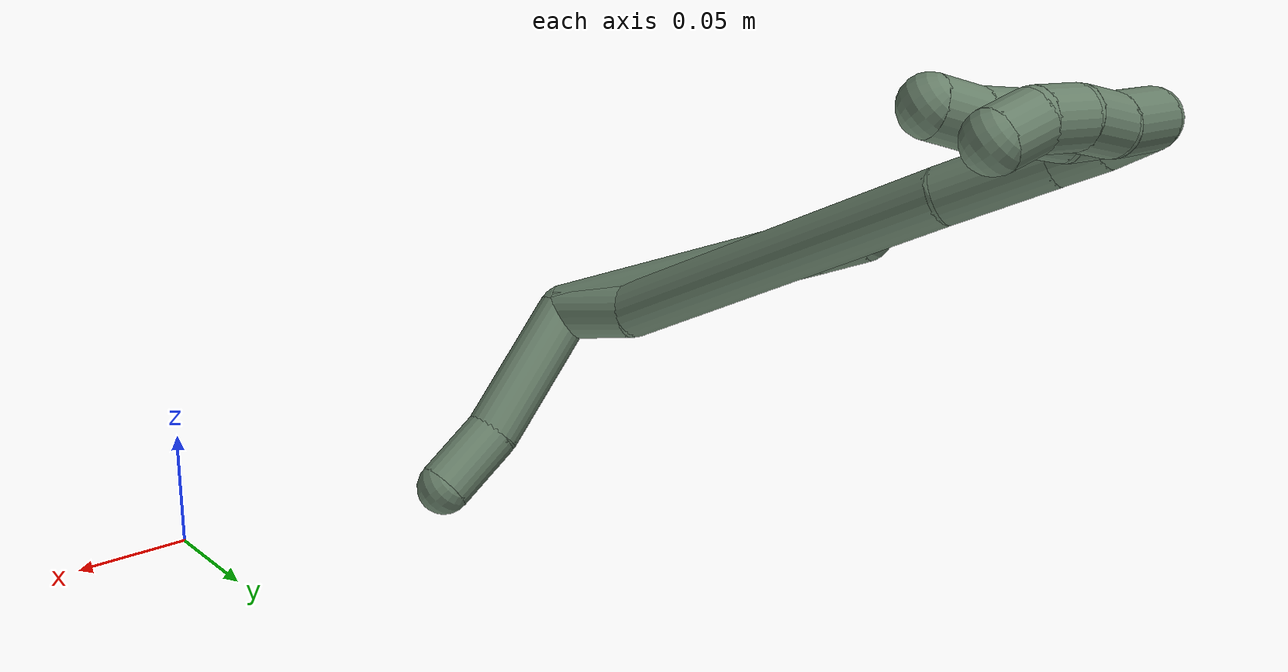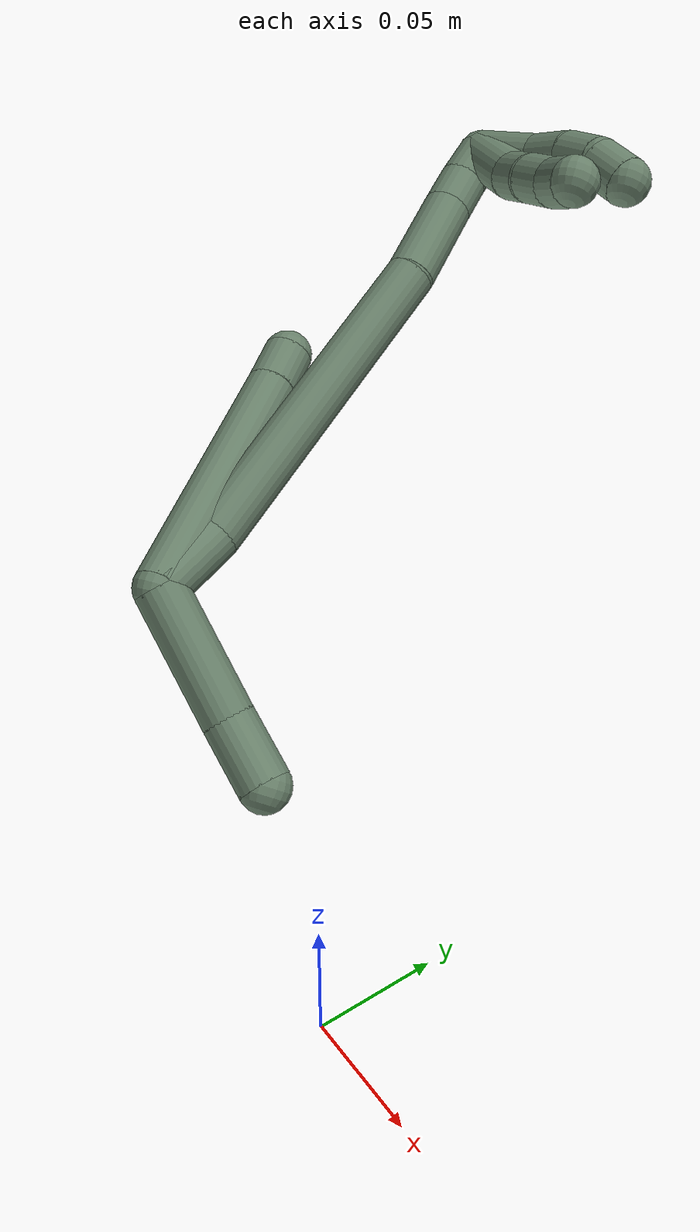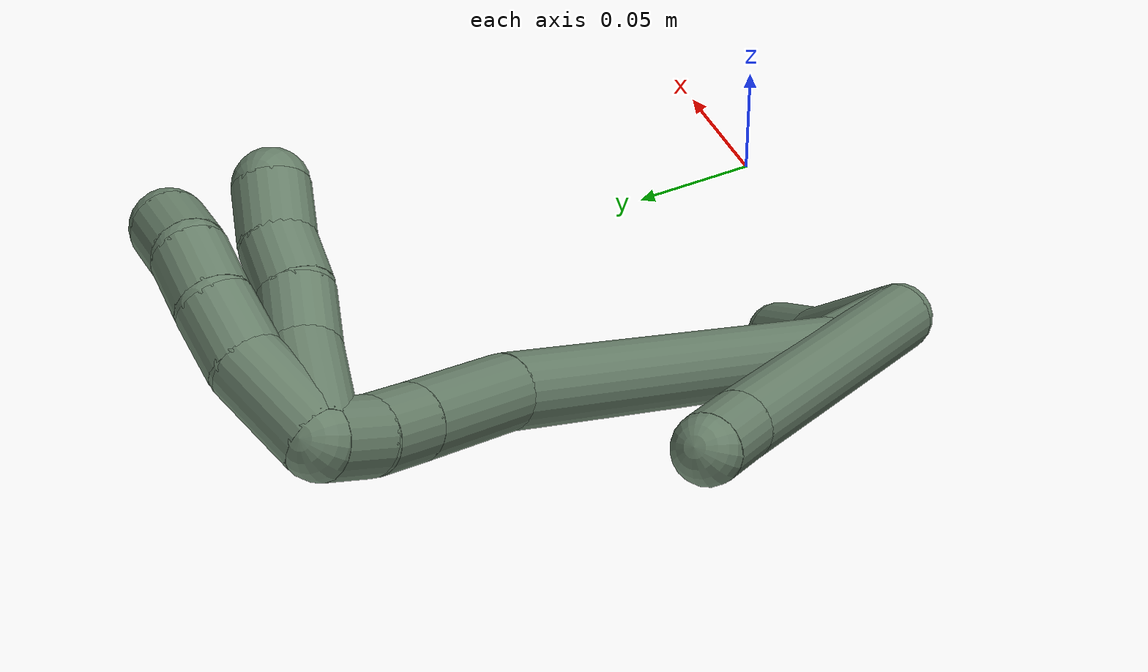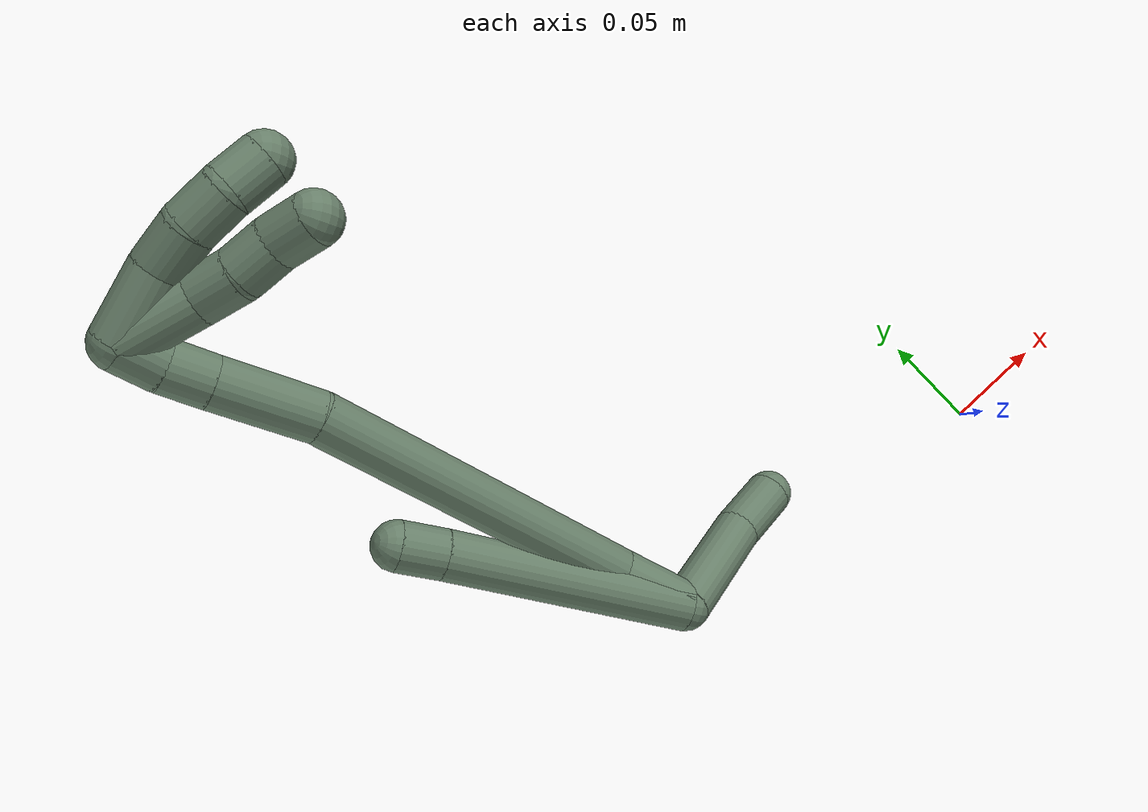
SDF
<sdf version="1.7">
 <world name="default">
  <model name="photoneo_s_sensor">
   <static>1</static>
   <pose>0 0 2 1.57079 1.57079 3.14159</pose>
   <link name="link">
    <inertial><mass>0.1</mass></inertial>
    <sensor name="sensor" type="depth">
     <update_rate>30</update_rate>
     <camera>
      <horizontal_fov>1.22</horizontal_fov>
      <image><width>1920</width><height>1200</height><format>B8G8R8</format></image>
      <clip><near>0.1</near><far>4</far></clip>
      <depth_camera><output>points</output></depth_camera>
     </camera>
     <plugin name="camera_plugin" filename="libgazebo_ros_depth_camera.so">
      <baseline>0.2</baseline>
      <alwaysOn>1</alwaysOn>
      <updateRate>0.0</updateRate>
      <cameraName>camera_ir</cameraName>
      <imageTopicName>/camera/color/image_raw</imageTopicName>
      <cameraInfoTopicName>/camera/color/camera_info</cameraInfoTopicName>
      <depthImageTopicName>/camera/depth/image_raw</depthImageTopicName>
      <depthImageCameraInfoTopicName>/camera/depth/camera_info</depthImageCameraInfoTopicName>
      <pointCloudTopicName>/camera/depth/points</pointCloudTopicName>
      <frameName>fr_optical</frameName>
      <pointCloudCutoff>0.1</pointCloudCutoff>
      <pointCloudCutoffMax>2.0</pointCloudCutoffMax>
      <distortionK1>0</distortionK1>
      <distortionK2>0</distortionK2>
      <distortionK3>0</distortionK3>
      <distortionT1>0</distortionT1>
      <distortionT2>0</distortionT2>
      <CxPrime>0</CxPrime>
      <Cx>0</Cx>
      <Cy>0</Cy>
      <focalLength>0</focalLength>
      <hackBaseline>0</hackBaseline>
     </plugin>
    </sensor>
   </link>
  </model>
  <model name="bin">
   <static>1</static>
   <link name="bottom">
    <collision name="collision-bottom">
     <pose>0 0 -0.01 0 -0 0</pose>
     <geometry><box><size>0.8 0.6 0.02</size></box></geometry>
     <surface>
      <friction><ode><mu>100</mu><mu2>100</mu2></ode></friction>
      <contact><collide_bitmask>65535</collide_bitmask></contact>
     </surface>
    </collision>
   </link>
   <link name="west_wall">
    <collision name="collision-west_wall">
     <pose>-0.41 0 0.1 0 -0 0</pose>
     <geometry><box><size>0.02 0.6 0.2</size></box></geometry>
     <surface>
      <friction><ode><mu>100</mu><mu2>100</mu2></ode></friction>
      <contact><collide_bitmask>65535</collide_bitmask></contact>
     </surface>
    </collision>
   </link>
   <link name="east_wall">
    <collision name="collision-east_wall">
     <pose>0.41 0 0.1 0 -0 0</pose>
     <geometry><box><size>0.02 0.6 0.2</size></box></geometry>
     <surface>
      <friction><ode><mu>100</mu><mu2>100</mu2></ode></friction>
      <contact><collide_bitmask>65535</collide_bitmask></contact>
     </surface>
    </collision>
   </link>
   <link name="south_wall">
    <collision name="collision-south_wall">
     <pose>0 -0.31 0.1 0 -0 0</pose>
     <geometry><box><size>0.8 0.02 0.2</size></box></geometry>
     <surface>
      <friction><ode><mu>100</mu><mu2>100</mu2></ode></friction>
      <contact><collide_bitmask>65535</collide_bitmask></contact>
     </surface>
    </collision>
   </link>
   <link name="north_wall">
    <collision name="collision-north_wall">
     <pose>0 0.31 0.1 0 -0 0</pose>
     <geometry><box><size>0.8 0.02 0.2</size></box></geometry>
     <surface>
      <friction><ode><mu>100</mu><mu2>100</mu2></ode></friction>
      <contact><collide_bitmask>65535</collide_bitmask></contact>
     </surface>
    </collision>
   </link>
  </model>
  <model name="17">
   <static>0</static>
   <link name="17">
    <collision name="collision-cylinder-e_1_2_8">
     <pose>-0.003681 0.023708 0.058859 -0.382906 -0.05795 0.011235</pose>
     <geometry><cylinder><radius>0.0125</radius><length>0.127121</length></cylinder></geometry>
     <surface>
      <friction><ode><mu>1.16</mu><mu2>1.16</mu2><slip1>0</slip1><slip2>0</slip2></ode></friction>
      <contact><ode><kp>1e+06</kp><kd>1</kd><max_vel>0</max_vel><min_depth>0.001</min_depth></ode></contact>
     </surface>
    </collision>
    <visual name="visual-cylinder-e_1_2_8">
     <pose>-0.003681 0.023708 0.058859 -0.382906 -0.05795 0.011235</pose>
     <geometry><cylinder><radius>0.0125</radius><length>0.127121</length></cylinder></geometry>
     <material><ambient>0.415686 0.509804 0.423529 1</ambient></material>
    </visual>
    <collision name="collision-cylinder-e_2_8_6">
     <pose>-0.008355 0.051619 0.12831 -0.377796 -0.086903 0.016624</pose>
     <geometry><cylinder><radius>0.0125</radius><length>0.022879</length></cylinder></geometry>
     <surface>
      <friction><ode><mu>1.16</mu><mu2>1.16</mu2><slip1>0</slip1><slip2>0</slip2></ode></friction>
      <contact><ode><kp>1e+06</kp><kd>1</kd><max_vel>0</max_vel><min_depth>0.001</min_depth></ode></contact>
     </surface>
    </collision>
    <visual name="visual-cylinder-e_2_8_6">
     <pose>-0.008355 0.051619 0.12831 -0.377796 -0.086903 0.016624</pose>
     <geometry><cylinder><radius>0.0125</radius><length>0.022879</length></cylinder></geometry>
     <material><ambient>0.415686 0.509804 0.423529 1</ambient></material>
    </visual>
    <collision name="collision-cylinder-e_1_2_9">
     <pose>0.019284 0.01363 -0.023329 -2.61283 0.61987 -1.73805</pose>
     <geometry><cylinder><radius>0.0125</radius><length>0.06639</length></cylinder></geometry>
     <surface>
      <friction><ode><mu>1.16</mu><mu2>1.16</mu2><slip1>0</slip1><slip2>0</slip2></ode></friction>
      <contact><ode><kp>1e+06</kp><kd>1</kd><max_vel>0</max_vel><min_depth>0.001</min_depth></ode></contact>
     </surface>
    </collision>
    <visual name="visual-cylinder-e_1_2_9">
     <pose>0.019284 0.01363 -0.023329 -2.61283 0.61987 -1.73805</pose>
     <geometry><cylinder><radius>0.0125</radius><length>0.06639</length></cylinder></geometry>
     <material><ambient>0.415686 0.509804 0.423529 1</ambient></material>
    </visual>
    <collision name="collision-cylinder-e_2_9_5">
     <pose>0.050048 0.031343 -0.058232 -2.80251 0.752074 -2.32338</pose>
     <geometry><cylinder><radius>0.0125</radius><length>0.03361</length></cylinder></geometry>
     <surface>
      <friction><ode><mu>1.16</mu><mu2>1.16</mu2><slip1>0</slip1><slip2>0</slip2></ode></friction>
      <contact><ode><kp>1e+06</kp><kd>1</kd><max_vel>0</max_vel><min_depth>0.001</min_depth></ode></contact>
     </surface>
    </collision>
    <visual name="visual-cylinder-e_2_9_5">
     <pose>0.050048 0.031343 -0.058232 -2.80251 0.752074 -2.32338</pose>
     <geometry><cylinder><radius>0.0125</radius><length>0.03361</length></cylinder></geometry>
     <material><ambient>0.415686 0.509804 0.423529 1</ambient></material>
    </visual>
    <collision name="collision-cylinder-e_1_2_10">
     <pose>0.002995 0.01003 0.016042 -0.558771 0.156989 -0.045124</pose>
     <geometry><cylinder><radius>0.0125</radius><length>0.03831</length></cylinder></geometry>
     <surface>
      <friction><ode><mu>1.16</mu><mu2>1.16</mu2><slip1>0</slip1><slip2>0</slip2></ode></friction>
      <contact><ode><kp>1e+06</kp><kd>1</kd><max_vel>0</max_vel><min_depth>0.001</min_depth></ode></contact>
     </surface>
    </collision>
    <visual name="visual-cylinder-e_1_2_10">
     <pose>0.002995 0.01003 0.016042 -0.558771 0.156989 -0.045124</pose>
     <geometry><cylinder><radius>0.0125</radius><length>0.03831</length></cylinder></geometry>
     <material><ambient>0.415686 0.509804 0.423529 1</ambient></material>
    </visual>
    <collision name="collision-cylinder-e_2_10_11">
     <pose>0.022694 0.043038 0.112932 -0.276913 0.196193 -0.027425</pose>
     <geometry><cylinder><radius>0.0125</radius><length>0.171389</length></cylinder></geometry>
     <surface>
      <friction><ode><mu>1.16</mu><mu2>1.16</mu2><slip1>0</slip1><slip2>0</slip2></ode></friction>
      <contact><ode><kp>1e+06</kp><kd>1</kd><max_vel>0</max_vel><min_depth>0.001</min_depth></ode></contact>
     </surface>
    </collision>
    <visual name="visual-cylinder-e_2_10_11">
     <pose>0.022694 0.043038 0.112932 -0.276913 0.196193 -0.027425</pose>
     <geometry><cylinder><radius>0.0125</radius><length>0.171389</length></cylinder></geometry>
     <material><ambient>0.415686 0.509804 0.423529 1</ambient></material>
    </visual>
    <collision name="collision-cylinder-e_3_11_12">
     <pose>0.040197 0.07315 0.216958 -0.298561 0.032886 -0.004946</pose>
     <geometry><cylinder><radius>0.0125</radius><length>0.048526</length></cylinder></geometry>
     <surface>
      <friction><ode><mu>1.16</mu><mu2>1.16</mu2><slip1>0</slip1><slip2>0</slip2></ode></friction>
      <contact><ode><kp>1e+06</kp><kd>1</kd><max_vel>0</max_vel><min_depth>0.001</min_depth></ode></contact>
     </surface>
    </collision>
    <visual name="visual-cylinder-e_3_11_12">
     <pose>0.040197 0.07315 0.216958 -0.298561 0.032886 -0.004946</pose>
     <geometry><cylinder><radius>0.0125</radius><length>0.048526</length></cylinder></geometry>
     <material><ambient>0.415686 0.509804 0.423529 1</ambient></material>
    </visual>
    <collision name="collision-cylinder-e_4_12_13">
     <pose>0.041526 0.08343 0.250246 -0.301805 0.050133 -0.007625</pose>
     <geometry><cylinder><radius>0.0125</radius><length>0.021206</length></cylinder></geometry>
     <surface>
      <friction><ode><mu>1.16</mu><mu2>1.16</mu2><slip1>0</slip1><slip2>0</slip2></ode></friction>
      <contact><ode><kp>1e+06</kp><kd>1</kd><max_vel>0</max_vel><min_depth>0.001</min_depth></ode></contact>
     </surface>
    </collision>
    <visual name="visual-cylinder-e_4_12_13">
     <pose>0.041526 0.08343 0.250246 -0.301805 0.050133 -0.007625</pose>
     <geometry><cylinder><radius>0.0125</radius><length>0.021206</length></cylinder></geometry>
     <material><ambient>0.415686 0.509804 0.423529 1</ambient></material>
    </visual>
    <collision name="collision-cylinder-e_5_13_1">
     <pose>0.043952 0.08877 0.270225 -0.218567 0.185259 -0.020384</pose>
     <geometry><cylinder><radius>0.0125</radius><length>0.020569</length></cylinder></geometry>
     <surface>
      <friction><ode><mu>1.16</mu><mu2>1.16</mu2><slip1>0</slip1><slip2>0</slip2></ode></friction>
      <contact><ode><kp>1e+06</kp><kd>1</kd><max_vel>0</max_vel><min_depth>0.001</min_depth></ode></contact>
     </surface>
    </collision>
    <visual name="visual-cylinder-e_5_13_1">
     <pose>0.043952 0.08877 0.270225 -0.218567 0.185259 -0.020384</pose>
     <geometry><cylinder><radius>0.0125</radius><length>0.020569</length></cylinder></geometry>
     <material><ambient>0.415686 0.509804 0.423529 1</ambient></material>
    </visual>
    <collision name="collision-cylinder-e_1_1_14">
     <pose>0.060139 0.083721 0.269855 2.52603 0.850625 1.91774</pose>
     <geometry><cylinder><radius>0.0125</radius><length>0.038026</length></cylinder></geometry>
     <surface>
      <friction><ode><mu>1.16</mu><mu2>1.16</mu2><slip1>0</slip1><slip2>0</slip2></ode></friction>
      <contact><ode><kp>1e+06</kp><kd>1</kd><max_vel>0</max_vel><min_depth>0.001</min_depth></ode></contact>
     </surface>
    </collision>
    <visual name="visual-cylinder-e_1_1_14">
     <pose>0.060139 0.083721 0.269855 2.52603 0.850625 1.91774</pose>
     <geometry><cylinder><radius>0.0125</radius><length>0.038026</length></cylinder></geometry>
     <material><ambient>0.415686 0.509804 0.423529 1</ambient></material>
    </visual>
    <collision name="collision-cylinder-e_2_14_15">
     <pose>0.08222 0.070265 0.25559 2.14576 0.810561 1.33629</pose>
     <geometry><cylinder><radius>0.0125</radius><length>0.021497</length></cylinder></geometry>
     <surface>
      <friction><ode><mu>1.16</mu><mu2>1.16</mu2><slip1>0</slip1><slip2>0</slip2></ode></friction>
      <contact><ode><kp>1e+06</kp><kd>1</kd><max_vel>0</max_vel><min_depth>0.001</min_depth></ode></contact>
     </surface>
    </collision>
    <visual name="visual-cylinder-e_2_14_15">
     <pose>0.08222 0.070265 0.25559 2.14576 0.810561 1.33629</pose>
     <geometry><cylinder><radius>0.0125</radius><length>0.021497</length></cylinder></geometry>
     <material><ambient>0.415686 0.509804 0.423529 1</ambient></material>
    </visual>
    <collision name="collision-cylinder-e_3_15_16">
     <pose>0.098493 0.059769 0.248208 2.23549 1.00078 1.68673</pose>
     <geometry><cylinder><radius>0.0125</radius><length>0.020153</length></cylinder></geometry>
     <surface>
      <friction><ode><mu>1.16</mu><mu2>1.16</mu2><slip1>0</slip1><slip2>0</slip2></ode></friction>
      <contact><ode><kp>1e+06</kp><kd>1</kd><max_vel>0</max_vel><min_depth>0.001</min_depth></ode></contact>
     </surface>
    </collision>
    <visual name="visual-cylinder-e_3_15_16">
     <pose>0.098493 0.059769 0.248208 2.23549 1.00078 1.68673</pose>
     <geometry><cylinder><radius>0.0125</radius><length>0.020153</length></cylinder></geometry>
     <material><ambient>0.415686 0.509804 0.423529 1</ambient></material>
    </visual>
    <collision name="collision-cylinder-e_4_16_4">
     <pose>0.114251 0.049077 0.241818 2.01301 0.797989 1.17523</pose>
     <geometry><cylinder><radius>0.0125</radius><length>0.020323</length></cylinder></geometry>
     <surface>
      <friction><ode><mu>1.16</mu><mu2>1.16</mu2><slip1>0</slip1><slip2>0</slip2></ode></friction>
      <contact><ode><kp>1e+06</kp><kd>1</kd><max_vel>0</max_vel><min_depth>0.001</min_depth></ode></contact>
     </surface>
    </collision>
    <visual name="visual-cylinder-e_4_16_4">
     <pose>0.114251 0.049077 0.241818 2.01301 0.797989 1.17523</pose>
     <geometry><cylinder><radius>0.0125</radius><length>0.020323</length></cylinder></geometry>
     <material><ambient>0.415686 0.509804 0.423529 1</ambient></material>
    </visual>
    <collision name="collision-cylinder-e_1_1_17">
     <pose>0.063222 0.088112 0.277942 2.21738 1.36809 2.04487</pose>
     <geometry><cylinder><radius>0.0125</radius><length>0.035477</length></cylinder></geometry>
     <surface>
      <friction><ode><mu>1.16</mu><mu2>1.16</mu2><slip1>0</slip1><slip2>0</slip2></ode></friction>
      <contact><ode><kp>1e+06</kp><kd>1</kd><max_vel>0</max_vel><min_depth>0.001</min_depth></ode></contact>
     </surface>
    </collision>
    <visual name="visual-cylinder-e_1_1_17">
     <pose>0.063222 0.088112 0.277942 2.21738 1.36809 2.04487</pose>
     <geometry><cylinder><radius>0.0125</radius><length>0.035477</length></cylinder></geometry>
     <material><ambient>0.415686 0.509804 0.423529 1</ambient></material>
    </visual>
    <collision name="collision-cylinder-e_2_17_18">
     <pose>0.090894 0.080769 0.274315 1.88801 1.14033 1.44935</pose>
     <geometry><cylinder><radius>0.0125</radius><length>0.022661</length></cylinder></geometry>
     <surface>
      <friction><ode><mu>1.16</mu><mu2>1.16</mu2><slip1>0</slip1><slip2>0</slip2></ode></friction>
      <contact><ode><kp>1e+06</kp><kd>1</kd><max_vel>0</max_vel><min_depth>0.001</min_depth></ode></contact>
     </surface>
    </collision>
    <visual name="visual-cylinder-e_2_17_18">
     <pose>0.090894 0.080769 0.274315 1.88801 1.14033 1.44935</pose>
     <geometry><cylinder><radius>0.0125</radius><length>0.022661</length></cylinder></geometry>
     <material><ambient>0.415686 0.509804 0.423529 1</ambient></material>
    </visual>
    <collision name="collision-cylinder-e_3_18_19">
     <pose>0.110736 0.072737 0.269204 2.36964 1.08216 1.95236</pose>
     <geometry><cylinder><radius>0.0125</radius><length>0.021621</length></cylinder></geometry>
     <surface>
      <friction><ode><mu>1.16</mu><mu2>1.16</mu2><slip1>0</slip1><slip2>0</slip2></ode></friction>
      <contact><ode><kp>1e+06</kp><kd>1</kd><max_vel>0</max_vel><min_depth>0.001</min_depth></ode></contact>
     </surface>
    </collision>
    <visual name="visual-cylinder-e_3_18_19">
     <pose>0.110736 0.072737 0.269204 2.36964 1.08216 1.95236</pose>
     <geometry><cylinder><radius>0.0125</radius><length>0.021621</length></cylinder></geometry>
     <material><ambient>0.415686 0.509804 0.423529 1</ambient></material>
    </visual>
    <collision name="collision-cylinder-e_4_19_3">
     <pose>0.128816 0.068387 0.260189 2.99207 1.00335 2.87015</pose>
     <geometry><cylinder><radius>0.0125</radius><length>0.020241</length></cylinder></geometry>
     <surface>
      <friction><ode><mu>1.16</mu><mu2>1.16</mu2><slip1>0</slip1><slip2>0</slip2></ode></friction>
      <contact><ode><kp>1e+06</kp><kd>1</kd><max_vel>0</max_vel><min_depth>0.001</min_depth></ode></contact>
     </surface>
    </collision>
    <visual name="visual-cylinder-e_4_19_3">
     <pose>0.128816 0.068387 0.260189 2.99207 1.00335 2.87015</pose>
     <geometry><cylinder><radius>0.0125</radius><length>0.020241</length></cylinder></geometry>
     <material><ambient>0.415686 0.509804 0.423529 1</ambient></material>
    </visual>
    <collision name="collision-sphere-3">
     <pose>0.13735 0.067576 0.25481 0 -0 0</pose>
     <geometry><sphere><radius>0.0125</radius></sphere></geometry>
     <surface>
      <friction><ode><mu>1.16</mu><mu2>1.16</mu2><slip1>0</slip1><slip2>0</slip2></ode></friction>
      <contact><ode><kp>1e+06</kp><kd>1</kd><max_vel>0</max_vel><min_depth>0.001</min_depth></ode></contact>
     </surface>
    </collision>
    <visual name="visual-sphere-3">
     <pose>0.13735 0.067576 0.25481 0 -0 0</pose>
     <geometry><sphere><radius>0.0125</radius></sphere></geometry>
     <material><ambient>0.415686 0.509804 0.423529 1</ambient></material>
    </visual>
    <collision name="collision-sphere-19">
     <pose>0.120282 0.069197 0.265568 0 -0 0</pose>
     <geometry><sphere><radius>0.0125</radius></sphere></geometry>
     <surface>
      <friction><ode><mu>1.16</mu><mu2>1.16</mu2><slip1>0</slip1><slip2>0</slip2></ode></friction>
      <contact><ode><kp>1e+06</kp><kd>1</kd><max_vel>0</max_vel><min_depth>0.001</min_depth></ode></contact>
     </surface>
    </collision>
    <visual name="visual-sphere-19">
     <pose>0.120282 0.069197 0.265568 0 -0 0</pose>
     <geometry><sphere><radius>0.0125</radius></sphere></geometry>
     <material><ambient>0.415686 0.509804 0.423529 1</ambient></material>
    </visual>
    <collision name="collision-sphere-10">
     <pose>0.00599 0.02006 0.032084 0 -0 0</pose>
     <geometry><sphere><radius>0.0125</radius></sphere></geometry>
     <surface>
      <friction><ode><mu>1.16</mu><mu2>1.16</mu2><slip1>0</slip1><slip2>0</slip2></ode></friction>
      <contact><ode><kp>1e+06</kp><kd>1</kd><max_vel>0</max_vel><min_depth>0.001</min_depth></ode></contact>
     </surface>
    </collision>
    <visual name="visual-sphere-10">
     <pose>0.00599 0.02006 0.032084 0 -0 0</pose>
     <geometry><sphere><radius>0.0125</radius></sphere></geometry>
     <material><ambient>0.415686 0.509804 0.423529 1</ambient></material>
    </visual>
    <collision name="collision-sphere-5">
     <pose>0.061529 0.035425 -0.069805 0 -0 0</pose>
     <geometry><sphere><radius>0.0125</radius></sphere></geometry>
     <surface>
      <friction><ode><mu>1.16</mu><mu2>1.16</mu2><slip1>0</slip1><slip2>0</slip2></ode></friction>
      <contact><ode><kp>1e+06</kp><kd>1</kd><max_vel>0</max_vel><min_depth>0.001</min_depth></ode></contact>
     </surface>
    </collision>
    <visual name="visual-sphere-5">
     <pose>0.061529 0.035425 -0.069805 0 -0 0</pose>
     <geometry><sphere><radius>0.0125</radius></sphere></geometry>
     <material><ambient>0.415686 0.509804 0.423529 1</ambient></material>
    </visual>
    <collision name="collision-sphere-6">
     <pose>-0.009348 0.055823 0.138903 0 -0 0</pose>
     <geometry><sphere><radius>0.0125</radius></sphere></geometry>
     <surface>
      <friction><ode><mu>1.16</mu><mu2>1.16</mu2><slip1>0</slip1><slip2>0</slip2></ode></friction>
      <contact><ode><kp>1e+06</kp><kd>1</kd><max_vel>0</max_vel><min_depth>0.001</min_depth></ode></contact>
     </surface>
    </collision>
    <visual name="visual-sphere-6">
     <pose>-0.009348 0.055823 0.138903 0 -0 0</pose>
     <geometry><sphere><radius>0.0125</radius></sphere></geometry>
     <material><ambient>0.415686 0.509804 0.423529 1</ambient></material>
    </visual>
    <collision name="collision-sphere-9">
     <pose>0.038568 0.027261 -0.046659 0 -0 0</pose>
     <geometry><sphere><radius>0.0125</radius></sphere></geometry>
     <surface>
      <friction><ode><mu>1.16</mu><mu2>1.16</mu2><slip1>0</slip1><slip2>0</slip2></ode></friction>
      <contact><ode><kp>1e+06</kp><kd>1</kd><max_vel>0</max_vel><min_depth>0.001</min_depth></ode></contact>
     </surface>
    </collision>
    <visual name="visual-sphere-9">
     <pose>0.038568 0.027261 -0.046659 0 -0 0</pose>
     <geometry><sphere><radius>0.0125</radius></sphere></geometry>
     <material><ambient>0.415686 0.509804 0.423529 1</ambient></material>
    </visual>
    <collision name="collision-sphere-2">
     <geometry><sphere><radius>0.0125</radius></sphere></geometry>
     <surface>
      <friction><ode><mu>1.16</mu><mu2>1.16</mu2><slip1>0</slip1><slip2>0</slip2></ode></friction>
      <contact><ode><kp>1e+06</kp><kd>1</kd><max_vel>0</max_vel><min_depth>0.001</min_depth></ode></contact>
     </surface>
    </collision>
    <visual name="visual-sphere-2">
     <geometry><sphere><radius>0.0125</radius></sphere></geometry>
     <material><ambient>0.415686 0.509804 0.423529 1</ambient></material>
    </visual>
    <collision name="collision-sphere-8">
     <pose>-0.007363 0.047415 0.117718 0 -0 0</pose>
     <geometry><sphere><radius>0.0125</radius></sphere></geometry>
     <surface>
      <friction><ode><mu>1.16</mu><mu2>1.16</mu2><slip1>0</slip1><slip2>0</slip2></ode></friction>
      <contact><ode><kp>1e+06</kp><kd>1</kd><max_vel>0</max_vel><min_depth>0.001</min_depth></ode></contact>
     </surface>
    </collision>
    <visual name="visual-sphere-8">
     <pose>-0.007363 0.047415 0.117718 0 -0 0</pose>
     <geometry><sphere><radius>0.0125</radius></sphere></geometry>
     <material><ambient>0.415686 0.509804 0.423529 1</ambient></material>
    </visual>
    <collision name="collision-sphere-11">
     <pose>0.039399 0.066017 0.19378 0 -0 0</pose>
     <geometry><sphere><radius>0.0125</radius></sphere></geometry>
     <surface>
      <friction><ode><mu>1.16</mu><mu2>1.16</mu2><slip1>0</slip1><slip2>0</slip2></ode></friction>
      <contact><ode><kp>1e+06</kp><kd>1</kd><max_vel>0</max_vel><min_depth>0.001</min_depth></ode></contact>
     </surface>
    </collision>
    <visual name="visual-sphere-11">
     <pose>0.039399 0.066017 0.19378 0 -0 0</pose>
     <geometry><sphere><radius>0.0125</radius></sphere></geometry>
     <material><ambient>0.415686 0.509804 0.423529 1</ambient></material>
    </visual>
    <collision name="collision-sphere-12">
     <pose>0.040995 0.080283 0.240135 0 -0 0</pose>
     <geometry><sphere><radius>0.0125</radius></sphere></geometry>
     <surface>
      <friction><ode><mu>1.16</mu><mu2>1.16</mu2><slip1>0</slip1><slip2>0</slip2></ode></friction>
      <contact><ode><kp>1e+06</kp><kd>1</kd><max_vel>0</max_vel><min_depth>0.001</min_depth></ode></contact>
     </surface>
    </collision>
    <visual name="visual-sphere-12">
     <pose>0.040995 0.080283 0.240135 0 -0 0</pose>
     <geometry><sphere><radius>0.0125</radius></sphere></geometry>
     <material><ambient>0.415686 0.509804 0.423529 1</ambient></material>
    </visual>
    <collision name="collision-sphere-13">
     <pose>0.042058 0.086578 0.260357 0 -0 0</pose>
     <geometry><sphere><radius>0.0125</radius></sphere></geometry>
     <surface>
      <friction><ode><mu>1.16</mu><mu2>1.16</mu2><slip1>0</slip1><slip2>0</slip2></ode></friction>
      <contact><ode><kp>1e+06</kp><kd>1</kd><max_vel>0</max_vel><min_depth>0.001</min_depth></ode></contact>
     </surface>
    </collision>
    <visual name="visual-sphere-13">
     <pose>0.042058 0.086578 0.260357 0 -0 0</pose>
     <geometry><sphere><radius>0.0125</radius></sphere></geometry>
     <material><ambient>0.415686 0.509804 0.423529 1</ambient></material>
    </visual>
    <collision name="collision-sphere-1">
     <pose>0.045847 0.090962 0.280093 0 -0 0</pose>
     <geometry><sphere><radius>0.0125</radius></sphere></geometry>
     <surface>
      <friction><ode><mu>1.16</mu><mu2>1.16</mu2><slip1>0</slip1><slip2>0</slip2></ode></friction>
      <contact><ode><kp>1e+06</kp><kd>1</kd><max_vel>0</max_vel><min_depth>0.001</min_depth></ode></contact>
     </surface>
    </collision>
    <visual name="visual-sphere-1">
     <pose>0.045847 0.090962 0.280093 0 -0 0</pose>
     <geometry><sphere><radius>0.0125</radius></sphere></geometry>
     <material><ambient>0.415686 0.509804 0.423529 1</ambient></material>
    </visual>
    <collision name="collision-sphere-18">
     <pose>0.101191 0.076277 0.272841 0 -0 0</pose>
     <geometry><sphere><radius>0.0125</radius></sphere></geometry>
     <surface>
      <friction><ode><mu>1.16</mu><mu2>1.16</mu2><slip1>0</slip1><slip2>0</slip2></ode></friction>
      <contact><ode><kp>1e+06</kp><kd>1</kd><max_vel>0</max_vel><min_depth>0.001</min_depth></ode></contact>
     </surface>
    </collision>
    <visual name="visual-sphere-18">
     <pose>0.101191 0.076277 0.272841 0 -0 0</pose>
     <geometry><sphere><radius>0.0125</radius></sphere></geometry>
     <material><ambient>0.415686 0.509804 0.423529 1</ambient></material>
    </visual>
    <collision name="collision-sphere-14">
     <pose>0.074431 0.076481 0.259618 0 -0 0</pose>
     <geometry><sphere><radius>0.0125</radius></sphere></geometry>
     <surface>
      <friction><ode><mu>1.16</mu><mu2>1.16</mu2><slip1>0</slip1><slip2>0</slip2></ode></friction>
      <contact><ode><kp>1e+06</kp><kd>1</kd><max_vel>0</max_vel><min_depth>0.001</min_depth></ode></contact>
     </surface>
    </collision>
    <visual name="visual-sphere-14">
     <pose>0.074431 0.076481 0.259618 0 -0 0</pose>
     <geometry><sphere><radius>0.0125</radius></sphere></geometry>
     <material><ambient>0.415686 0.509804 0.423529 1</ambient></material>
    </visual>
    <collision name="collision-sphere-15">
     <pose>0.090009 0.064049 0.251562 0 -0 0</pose>
     <geometry><sphere><radius>0.0125</radius></sphere></geometry>
     <surface>
      <friction><ode><mu>1.16</mu><mu2>1.16</mu2><slip1>0</slip1><slip2>0</slip2></ode></friction>
      <contact><ode><kp>1e+06</kp><kd>1</kd><max_vel>0</max_vel><min_depth>0.001</min_depth></ode></contact>
     </surface>
    </collision>
    <visual name="visual-sphere-15">
     <pose>0.090009 0.064049 0.251562 0 -0 0</pose>
     <geometry><sphere><radius>0.0125</radius></sphere></geometry>
     <material><ambient>0.415686 0.509804 0.423529 1</ambient></material>
    </visual>
    <collision name="collision-sphere-16">
     <pose>0.106976 0.055489 0.244854 0 -0 0</pose>
     <geometry><sphere><radius>0.0125</radius></sphere></geometry>
     <surface>
      <friction><ode><mu>1.16</mu><mu2>1.16</mu2><slip1>0</slip1><slip2>0</slip2></ode></friction>
      <contact><ode><kp>1e+06</kp><kd>1</kd><max_vel>0</max_vel><min_depth>0.001</min_depth></ode></contact>
     </surface>
    </collision>
    <visual name="visual-sphere-16">
     <pose>0.106976 0.055489 0.244854 0 -0 0</pose>
     <geometry><sphere><radius>0.0125</radius></sphere></geometry>
     <material><ambient>0.415686 0.509804 0.423529 1</ambient></material>
    </visual>
    <collision name="collision-sphere-4">
     <pose>0.121527 0.042665 0.238782 0 -0 0</pose>
     <geometry><sphere><radius>0.0125</radius></sphere></geometry>
     <surface>
      <friction><ode><mu>1.16</mu><mu2>1.16</mu2><slip1>0</slip1><slip2>0</slip2></ode></friction>
      <contact><ode><kp>1e+06</kp><kd>1</kd><max_vel>0</max_vel><min_depth>0.001</min_depth></ode></contact>
     </surface>
    </collision>
    <visual name="visual-sphere-4">
     <pose>0.121527 0.042665 0.238782 0 -0 0</pose>
     <geometry><sphere><radius>0.0125</radius></sphere></geometry>
     <material><ambient>0.415686 0.509804 0.423529 1</ambient></material>
    </visual>
    <collision name="collision-sphere-17">
     <pose>0.080597 0.085261 0.27579 0 -0 0</pose>
     <geometry><sphere><radius>0.0125</radius></sphere></geometry>
     <surface>
      <friction><ode><mu>1.16</mu><mu2>1.16</mu2><slip1>0</slip1><slip2>0</slip2></ode></friction>
      <contact><ode><kp>1e+06</kp><kd>1</kd><max_vel>0</max_vel><min_depth>0.001</min_depth></ode></contact>
     </surface>
    </collision>
    <visual name="visual-sphere-17">
     <pose>0.080597 0.085261 0.27579 0 -0 0</pose>
     <geometry><sphere><radius>0.0125</radius></sphere></geometry>
     <material><ambient>0.415686 0.509804 0.423529 1</ambient></material>
    </visual>
    <inertial>
     <pose>0.036944 0.047823 0.134815 0 -0 0</pose>
     <mass>0.75</mass>
     <inertia>
      <ixx>0.000604</ixx>
      <ixy>0</ixy>
      <ixz>0</ixz>
      <iyy>0.00061</iyy>
      <iyz>0</iyz>
      <izz>-0.000282</izz>
     </inertia>
    </inertial>
   </link>
   <pose>-0.181931 0.036172 0.079773 -0.81755 -0.096979 0.46772</pose>
  </model>
 </world>
</sdf>
